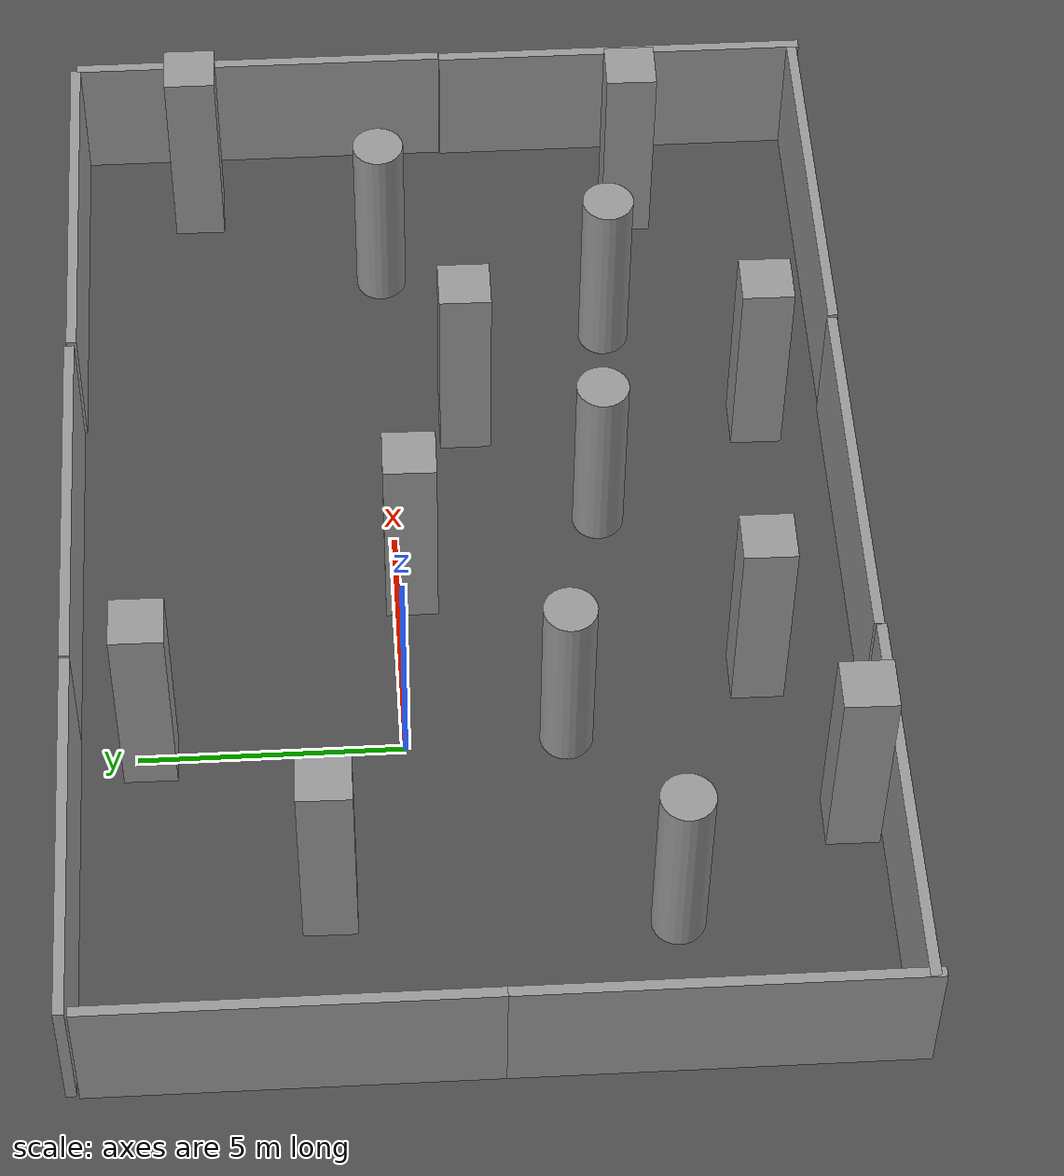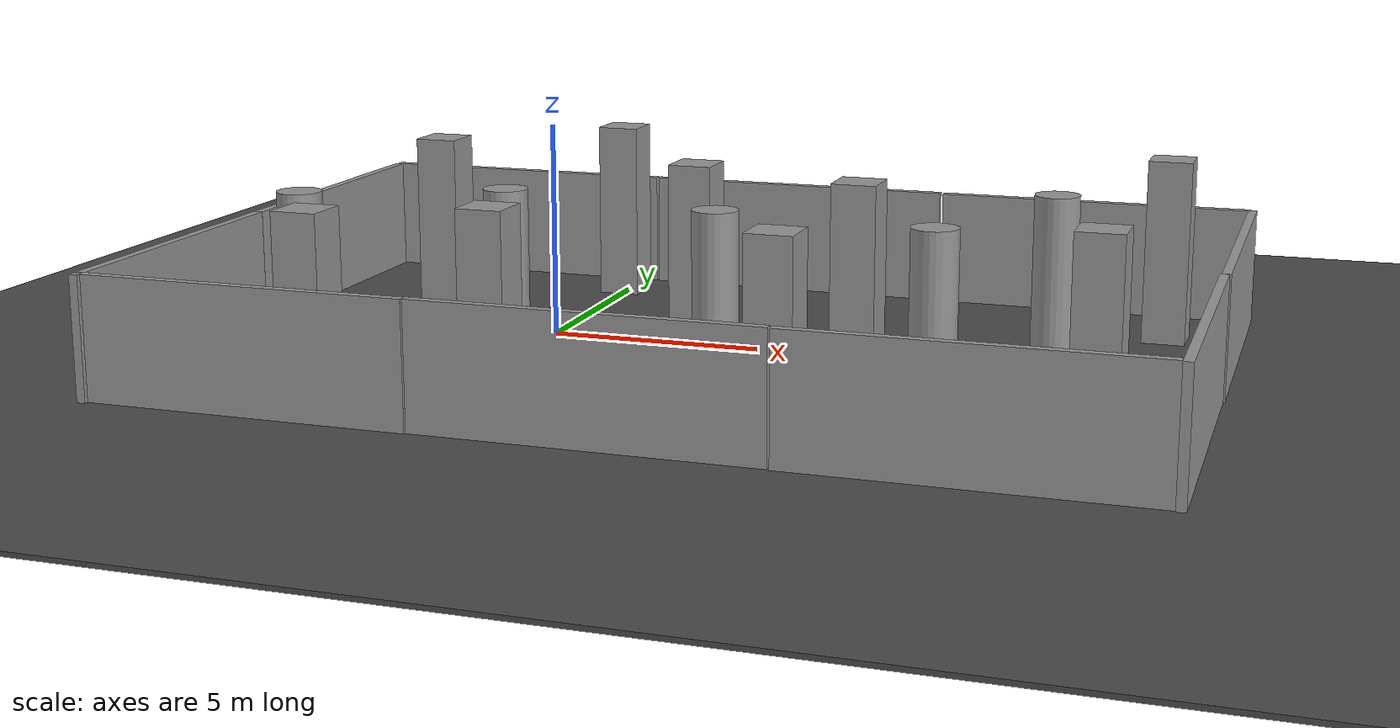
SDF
<sdf version="1.6">
 <world name="default">
  <light name="sun" type="directional">
   <pose>0 0 10 0 -0 0</pose>
   <diffuse>0.8 0.8 0.8 1</diffuse>
   <specular>0.2 0.2 0.2 1</specular>
   <attenuation>
    <range>1000</range>
    <constant>0.9</constant>
    <linear>0.01</linear>
    <quadratic>0.001</quadratic>
   </attenuation>
   <direction>-0.5 0.1 -0.9</direction>
  </light>
  <model name="ground_plane">
   <static>1</static>
   <link name="link">
    <collision name="collision">
     <geometry><plane><normal>0 0 1</normal><size>100 100</size></plane></geometry>
     <surface>
      <contact><collide_bitmask>65535</collide_bitmask></contact>
      <friction><ode><mu>100</mu><mu2>50</mu2></ode></friction>
     </surface>
    </collision>
    <visual name="visual">
     <cast_shadows>0</cast_shadows>
     <geometry><plane><normal>0 0 1</normal><size>100 100</size></plane></geometry>
     <material>
      <script><uri>file://media/materials/scripts/gazebo.material</uri><name>Gazebo/Grey</name></script>
     </material>
    </visual>
   </link>
  </model>
  <model name="asphalt_plane">
   <pose>0.47757 -0.763549 0 0 -0 0</pose>
   <static>1</static>
   <link name="link">
    <collision name="collision"><geometry><box><size>200 200 0.1</size></box></geometry></collision>
    <visual name="visual">
     <cast_shadows>0</cast_shadows>
     <geometry><box><size>200 200 0.1</size></box></geometry>
     <material>
      <script>
       <uri>model://asphalt_plane/materials/scripts</uri>
       <uri>model://asphalt_plane/materials/textures</uri>
       <name>vrc/asphalt</name>
      </script>
     </material>
    </visual>
   </link>
  </model>
  <physics name="default_physics" default="0" type="ode">
   <ode>
    <solver>
     <type>quick</type>
     <iters>10</iters>
     <sor>1.3</sor>
     <use_dynamic_moi_rescaling>0</use_dynamic_moi_rescaling>
    </solver>
    <constraints>
     <cfm>0</cfm>
     <erp>0.2</erp>
     <contact_max_correcting_vel>100</contact_max_correcting_vel>
     <contact_surface_layer>0.001</contact_surface_layer>
    </constraints>
   </ode>
   <max_step_size>0.004</max_step_size>
   <real_time_factor>1</real_time_factor>
   <real_time_update_rate>250</real_time_update_rate>
  </physics>
  <gravity>0 0 -9.8066</gravity>
  <magnetic_field>6e-06 2.3e-05 -4.2e-05</magnetic_field>
  <atmosphere type="adiabatic"/>
  <scene><ambient>0.4 0.4 0.4 1</ambient><background>0.7 0.7 0.7 1</background><shadows>1</shadows></scene>
  <spherical_coordinates>
   <surface_model>EARTH_WGS84</surface_model>
   <latitude_deg>0</latitude_deg>
   <longitude_deg>0</longitude_deg>
   <elevation>0</elevation>
   <heading_deg>0</heading_deg>
  </spherical_coordinates>
  <model name="grey_wall_clone">
   <static>1</static>
   <link name="link">
    <pose>0 0 1.4 0 -0 0</pose>
    <collision name="collision"><geometry><box><size>7.5 0.2 2.8</size></box></geometry></collision>
    <visual name="visual">
     <cast_shadows>0</cast_shadows>
     <geometry><box><size>7.5 0.2 2.8</size></box></geometry>
     <material>
      <script>
       <uri>model://grey_wall/materials/scripts</uri>
       <uri>model://grey_wall/materials/textures</uri>
       <name>vrc/grey_wall</name>
      </script>
     </material>
    </visual>
   </link>
   <pose>4.19263 6.17342 0 0 -0 0</pose>
  </model>
  <model name="grey_wall_clone_0">
   <static>1</static>
   <link name="link">
    <pose>0 0 1.4 0 -0 0</pose>
    <collision name="collision"><geometry><box><size>7.5 0.2 2.8</size></box></geometry></collision>
    <visual name="visual">
     <cast_shadows>0</cast_shadows>
     <geometry><box><size>7.5 0.2 2.8</size></box></geometry>
     <material>
      <script>
       <uri>model://grey_wall/materials/scripts</uri>
       <uri>model://grey_wall/materials/textures</uri>
       <name>vrc/grey_wall</name>
      </script>
     </material>
    </visual>
   </link>
   <pose>11.7841 6.13348 0 0 -0 0</pose>
  </model>
  <model name="grey_wall_clone_1">
   <static>1</static>
   <link name="link">
    <pose>0 0 1.4 0 -0 0</pose>
    <collision name="collision"><geometry><box><size>7.5 0.2 2.8</size></box></geometry></collision>
    <visual name="visual">
     <cast_shadows>0</cast_shadows>
     <geometry><box><size>7.5 0.2 2.8</size></box></geometry>
     <material>
      <script>
       <uri>model://grey_wall/materials/scripts</uri>
       <uri>model://grey_wall/materials/textures</uri>
       <name>vrc/grey_wall</name>
      </script>
     </material>
    </visual>
   </link>
   <pose>-3.35706 6.16647 0 0 -0 0</pose>
  </model>
  <model name="grey_wall_clone_1_clone">
   <static>1</static>
   <link name="link">
    <pose>0 0 1.4 0 -0 0</pose>
    <collision name="collision"><geometry><box><size>7.5 0.2 2.8</size></box></geometry></collision>
    <visual name="visual">
     <cast_shadows>0</cast_shadows>
     <geometry><box><size>7.5 0.2 2.8</size></box></geometry>
     <material>
      <script>
       <uri>model://grey_wall/materials/scripts</uri>
       <uri>model://grey_wall/materials/textures</uri>
       <name>vrc/grey_wall</name>
      </script>
     </material>
    </visual>
   </link>
   <pose>-3.38972 -8.75607 0 0 -0 0</pose>
  </model>
  <model name="grey_wall_clone_1_clone_0">
   <static>1</static>
   <link name="link">
    <pose>0 0 1.4 0 -0 0</pose>
    <collision name="collision"><geometry><box><size>7.5 0.2 2.8</size></box></geometry></collision>
    <visual name="visual">
     <cast_shadows>0</cast_shadows>
     <geometry><box><size>7.5 0.2 2.8</size></box></geometry>
     <material>
      <script>
       <uri>model://grey_wall/materials/scripts</uri>
       <uri>model://grey_wall/materials/textures</uri>
       <name>vrc/grey_wall</name>
      </script>
     </material>
    </visual>
   </link>
   <pose>4.12912 -8.71972 0 0 -0 0</pose>
  </model>
  <model name="grey_wall_clone_1_clone_1">
   <static>1</static>
   <link name="link">
    <pose>0 0 1.4 0 -0 0</pose>
    <collision name="collision"><geometry><box><size>7.5 0.2 2.8</size></box></geometry></collision>
    <visual name="visual">
     <cast_shadows>0</cast_shadows>
     <geometry><box><size>7.5 0.2 2.8</size></box></geometry>
     <material>
      <script>
       <uri>model://grey_wall/materials/scripts</uri>
       <uri>model://grey_wall/materials/textures</uri>
       <name>vrc/grey_wall</name>
      </script>
     </material>
    </visual>
   </link>
   <pose>11.6852 -8.74994 0 0 -0 0</pose>
  </model>
  <model name="grey_wall_clone_1_clone_2">
   <static>1</static>
   <link name="link">
    <pose>0 0 1.4 0 -0 0</pose>
    <collision name="collision"><geometry><box><size>7.5 0.2 2.8</size></box></geometry></collision>
    <visual name="visual">
     <cast_shadows>0</cast_shadows>
     <geometry><box><size>7.5 0.2 2.8</size></box></geometry>
     <material>
      <script>
       <uri>model://grey_wall/materials/scripts</uri>
       <uri>model://grey_wall/materials/textures</uri>
       <name>vrc/grey_wall</name>
      </script>
     </material>
    </visual>
   </link>
   <pose>-7.05458 2.26683 0 0 -0 1.57</pose>
  </model>
  <model name="grey_wall_clone_1_clone_2_clone_1">
   <static>1</static>
   <link name="link">
    <pose>0 0 1.4 0 -0 0</pose>
    <collision name="collision"><geometry><box><size>7.5 0.2 2.8</size></box></geometry></collision>
    <visual name="visual">
     <cast_shadows>0</cast_shadows>
     <geometry><box><size>7.5 0.2 2.8</size></box></geometry>
     <material>
      <script>
       <uri>model://grey_wall/materials/scripts</uri>
       <uri>model://grey_wall/materials/textures</uri>
       <name>vrc/grey_wall</name>
      </script>
     </material>
    </visual>
   </link>
   <pose>15.54 -5.15314 0 0 -0 1.57</pose>
  </model>
  <model name="grey_wall_clone_1_clone_2_clone_2">
   <static>1</static>
   <link name="link">
    <pose>0 0 1.4 0 -0 0</pose>
    <collision name="collision"><geometry><box><size>7.5 0.2 2.8</size></box></geometry></collision>
    <visual name="visual">
     <cast_shadows>0</cast_shadows>
     <geometry><box><size>7.5 0.2 2.8</size></box></geometry>
     <material>
      <script>
       <uri>model://grey_wall/materials/scripts</uri>
       <uri>model://grey_wall/materials/textures</uri>
       <name>vrc/grey_wall</name>
      </script>
     </material>
    </visual>
   </link>
   <pose>15.5819 2.3615 0 0 -0 1.57</pose>
  </model>
  <model name="grey_wall_clone_1_clone_2_clone">
   <static>1</static>
   <link name="link">
    <pose>0 0 1.4 0 -0 0</pose>
    <collision name="collision"><geometry><box><size>7.5 0.2 2.8</size></box></geometry></collision>
    <visual name="visual">
     <cast_shadows>0</cast_shadows>
     <geometry><box><size>7.5 0.2 2.8</size></box></geometry>
     <material>
      <script>
       <uri>model://grey_wall/materials/scripts</uri>
       <uri>model://grey_wall/materials/textures</uri>
       <name>vrc/grey_wall</name>
      </script>
     </material>
    </visual>
   </link>
   <pose>-7.06157 -5.20413 0 0 -0 1.57</pose>
  </model>
  <model name="unit_cylinder">
   <pose>5.29029 -3.99926 2.03389 2.2e-05 -1.3e-05 0.013627</pose>
   <link name="link">
    <inertial>
     <mass>1</mass>
     <inertia><ixx>0.145833</ixx><ixy>0</ixy><ixz>0</ixz><iyy>0.145833</iyy><iyz>0</iyz><izz>0.125</izz></inertia>
    </inertial>
    <collision name="collision">
     <geometry><cylinder><radius>0.5</radius><length>3.96776</length></cylinder></geometry>
    </collision>
    <visual name="visual">
     <geometry><cylinder><radius>0.5</radius><length>3.96776</length></cylinder></geometry>
     <material>
      <script><name>Gazebo/Grey</name><uri>file://media/materials/scripts/gazebo.material</uri></script>
     </material>
    </visual>
   </link>
  </model>
  <model name="unit_box">
   <pose>3.62 -0.267326 2.19485 7e-06 -9e-06 -0.015307</pose>
   <link name="link">
    <inertial>
     <mass>1</mass>
     <inertia>
      <ixx>0.166667</ixx>
      <ixy>0</ixy>
      <ixz>0</ixz>
      <iyy>0.166667</iyy>
      <iyz>0</iyz>
      <izz>0.166667</izz>
     </inertia>
    </inertial>
    <collision name="collision"><geometry><box><size>1 1 4.28972</size></box></geometry></collision>
    <visual name="visual">
     <geometry><box><size>1 1 4.28972</size></box></geometry>
     <material>
      <script><name>Gazebo/Grey</name><uri>file://media/materials/scripts/gazebo.material</uri></script>
     </material>
    </visual>
   </link>
  </model>
  <model name="unit_cylinder_clone">
   <pose>11.8247 -0.009176 2.03389 -7e-06 -2.7e-05 0.011045</pose>
   <link name="link">
    <inertial>
     <mass>1</mass>
     <inertia><ixx>0.145833</ixx><ixy>0</ixy><ixz>0</ixz><iyy>0.145833</iyy><iyz>0</iyz><izz>0.125</izz></inertia>
    </inertial>
    <collision name="collision">
     <geometry><cylinder><radius>0.5</radius><length>3.96776</length></cylinder></geometry>
    </collision>
    <visual name="visual">
     <geometry><cylinder><radius>0.5</radius><length>3.96776</length></cylinder></geometry>
     <material>
      <script><name>Gazebo/Grey</name><uri>file://media/materials/scripts/gazebo.material</uri></script>
     </material>
    </visual>
   </link>
  </model>
  <model name="unit_cylinder_clone_0">
   <pose>10.0777 -4.46828 2.03389 -1.8e-05 -2e-05 0.013949</pose>
   <link name="link">
    <inertial>
     <mass>1</mass>
     <inertia><ixx>0.145833</ixx><ixy>0</ixy><ixz>0</ixz><iyy>0.145833</iyy><iyz>0</iyz><izz>0.125</izz></inertia>
    </inertial>
    <collision name="collision">
     <geometry><cylinder><radius>0.5</radius><length>3.96776</length></cylinder></geometry>
    </collision>
    <visual name="visual">
     <geometry><cylinder><radius>0.5</radius><length>3.96776</length></cylinder></geometry>
     <material>
      <script><name>Gazebo/Grey</name><uri>file://media/materials/scripts/gazebo.material</uri></script>
     </material>
    </visual>
   </link>
  </model>
  <model name="unit_cylinder_clone_1">
   <pose>-4.08256 -4.74682 2.03386 6e-06 -3e-06 0.011512</pose>
   <link name="link">
    <inertial>
     <mass>1</mass>
     <inertia><ixx>0.145833</ixx><ixy>0</ixy><ixz>0</ixz><iyy>0.145833</iyy><iyz>0</iyz><izz>0.125</izz></inertia>
    </inertial>
    <collision name="collision">
     <geometry><cylinder><radius>0.5</radius><length>3.96776</length></cylinder></geometry>
    </collision>
    <visual name="visual">
     <geometry><cylinder><radius>0.5</radius><length>3.96776</length></cylinder></geometry>
     <material>
      <script><name>Gazebo/Grey</name><uri>file://media/materials/scripts/gazebo.material</uri></script>
     </material>
    </visual>
   </link>
  </model>
  <model name="unit_box_clone">
   <pose>13.5111 -5.1721 2.19485 7e-06 -9e-06 -0.01088</pose>
   <link name="link">
    <inertial>
     <mass>1</mass>
     <inertia>
      <ixx>0.166667</ixx>
      <ixy>0</ixy>
      <ixz>0</ixz>
      <iyy>0.166667</iyy>
      <iyz>0</iyz>
      <izz>0.166667</izz>
     </inertia>
    </inertial>
    <collision name="collision"><geometry><box><size>1 1 4.28972</size></box></geometry></collision>
    <visual name="visual">
     <geometry><box><size>1 1 4.28972</size></box></geometry>
     <material>
      <script><name>Gazebo/Grey</name><uri>file://media/materials/scripts/gazebo.material</uri></script>
     </material>
    </visual>
   </link>
  </model>
  <model name="unit_box_clone_0">
   <pose>7.75502 -1.51046 2.19486 1.1e-05 5e-06 -0.008798</pose>
   <link name="link">
    <inertial>
     <mass>1</mass>
     <inertia>
      <ixx>0.166667</ixx>
      <ixy>0</ixy>
      <ixz>0</ixz>
      <iyy>0.166667</iyy>
      <iyz>0</iyz>
      <izz>0.166667</izz>
     </inertia>
    </inertial>
    <collision name="collision"><geometry><box><size>1 1 4.28972</size></box></geometry></collision>
    <visual name="visual">
     <geometry><box><size>1 1 4.28972</size></box></geometry>
     <material>
      <script><name>Gazebo/Grey</name><uri>file://media/materials/scripts/gazebo.material</uri></script>
     </material>
    </visual>
   </link>
  </model>
  <model name="unit_box_clone_1">
   <pose>7.57876 -7.30855 2.19485 7e-06 -9e-06 -0.008682</pose>
   <link name="link">
    <inertial>
     <mass>1</mass>
     <inertia>
      <ixx>0.166667</ixx>
      <ixy>0</ixy>
      <ixz>0</ixz>
      <iyy>0.166667</iyy>
      <iyz>0</iyz>
      <izz>0.166667</izz>
     </inertia>
    </inertial>
    <collision name="collision"><geometry><box><size>1 1 4.28972</size></box></geometry></collision>
    <visual name="visual">
     <geometry><box><size>1 1 4.28972</size></box></geometry>
     <material>
      <script><name>Gazebo/Grey</name><uri>file://media/materials/scripts/gazebo.material</uri></script>
     </material>
    </visual>
   </link>
  </model>
  <model name="unit_box_clone_2">
   <pose>1.30819 -6.6896 2.19486 1.1e-05 5e-06 -0.006599</pose>
   <link name="link">
    <inertial>
     <mass>1</mass>
     <inertia>
      <ixx>0.166667</ixx>
      <ixy>0</ixy>
      <ixz>0</ixz>
      <iyy>0.166667</iyy>
      <iyz>0</iyz>
      <izz>0.166667</izz>
     </inertia>
    </inertial>
    <collision name="collision"><geometry><box><size>1 1 4.28972</size></box></geometry></collision>
    <visual name="visual">
     <geometry><box><size>1 1 4.28972</size></box></geometry>
     <material>
      <script><name>Gazebo/Grey</name><uri>file://media/materials/scripts/gazebo.material</uri></script>
     </material>
    </visual>
   </link>
  </model>
  <model name="unit_box_clone_3">
   <pose>-0.005087 4.76049 2.19485 7e-06 -9e-06 -0.006481</pose>
   <link name="link">
    <inertial>
     <mass>1</mass>
     <inertia>
      <ixx>0.166667</ixx>
      <ixy>0</ixy>
      <ixz>0</ixz>
      <iyy>0.166667</iyy>
      <iyz>0</iyz>
      <izz>0.166667</izz>
     </inertia>
    </inertial>
    <collision name="collision"><geometry><box><size>1 1 4.28972</size></box></geometry></collision>
    <visual name="visual">
     <geometry><box><size>1 1 4.28972</size></box></geometry>
     <material>
      <script><name>Gazebo/Grey</name><uri>file://media/materials/scripts/gazebo.material</uri></script>
     </material>
    </visual>
   </link>
  </model>
  <model name="unit_box_clone_0_clone">
   <pose>13.8904 3.71131 2.19483 -4e-06 -8e-06 -0.0048</pose>
   <link name="link">
    <inertial>
     <mass>1</mass>
     <inertia>
      <ixx>0.166667</ixx>
      <ixy>0</ixy>
      <ixz>0</ixz>
      <iyy>0.166667</iyy>
      <iyz>0</iyz>
      <izz>0.166667</izz>
     </inertia>
    </inertial>
    <collision name="collision"><geometry><box><size>1 1 4.28972</size></box></geometry></collision>
    <visual name="visual">
     <geometry><box><size>1 1 4.28972</size></box></geometry>
     <material>
      <script><name>Gazebo/Grey</name><uri>file://media/materials/scripts/gazebo.material</uri></script>
     </material>
    </visual>
   </link>
  </model>
  <model name="unit_box_clone_4">
   <pose>-3.54003 1.52941 2.19483 -4e-06 -8e-06 -0.01094</pose>
   <link name="link">
    <inertial>
     <mass>1</mass>
     <inertia>
      <ixx>0.166667</ixx>
      <ixy>0</ixy>
      <ixz>0</ixz>
      <iyy>0.166667</iyy>
      <iyz>0</iyz>
      <izz>0.166667</izz>
     </inertia>
    </inertial>
    <collision name="collision"><geometry><box><size>1 1 4.28972</size></box></geometry></collision>
    <visual name="visual">
     <geometry><box><size>1 1 4.28972</size></box></geometry>
     <material>
      <script><name>Gazebo/Grey</name><uri>file://media/materials/scripts/gazebo.material</uri></script>
     </material>
    </visual>
   </link>
  </model>
  <model name="unit_box_clone_5">
   <pose>-2.08037 -8.10284 2.19484 -2.9e-05 6e-06 -0.010674</pose>
   <link name="link">
    <inertial>
     <mass>1</mass>
     <inertia>
      <ixx>0.166667</ixx>
      <ixy>0</ixy>
      <ixz>0</ixz>
      <iyy>0.166667</iyy>
      <iyz>0</iyz>
      <izz>0.166667</izz>
     </inertia>
    </inertial>
    <collision name="collision"><geometry><box><size>1 1 4.28972</size></box></geometry></collision>
    <visual name="visual">
     <geometry><box><size>1 1 4.28972</size></box></geometry>
     <material>
      <script><name>Gazebo/Grey</name><uri>file://media/materials/scripts/gazebo.material</uri></script>
     </material>
    </visual>
   </link>
  </model>
  <model name="unit_cylinder_clone_2">
   <pose>0.080995 -3.01135 2.03387 7e-06 -0 0.012909</pose>
   <link name="link">
    <inertial>
     <mass>1</mass>
     <inertia><ixx>0.145833</ixx><ixy>0</ixy><ixz>0</ixz><iyy>0.145833</iyy><iyz>0</iyz><izz>0.125</izz></inertia>
    </inertial>
    <collision name="collision">
     <geometry><cylinder><radius>0.5</radius><length>3.96776</length></cylinder></geometry>
    </collision>
    <visual name="visual">
     <geometry><cylinder><radius>0.5</radius><length>3.96776</length></cylinder></geometry>
     <material>
      <script><name>Gazebo/Grey</name><uri>file://media/materials/scripts/gazebo.material</uri></script>
     </material>
    </visual>
   </link>
  </model>
 </world>
</sdf>
